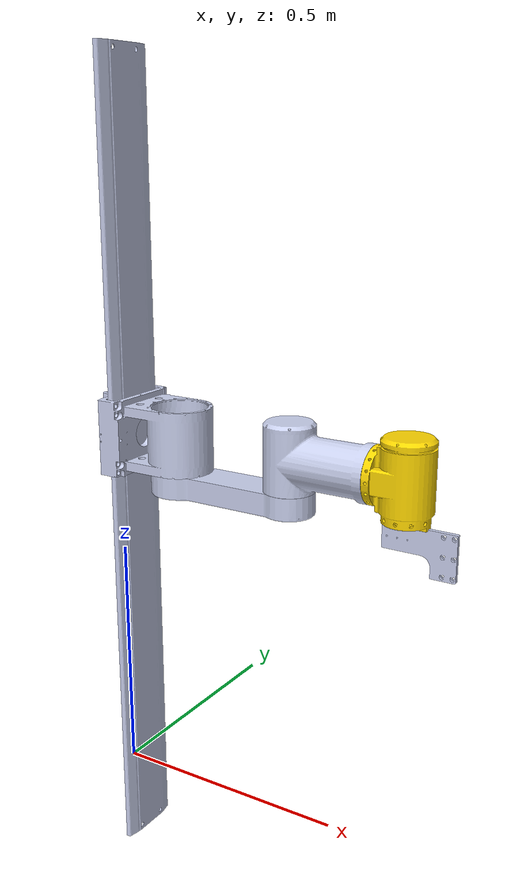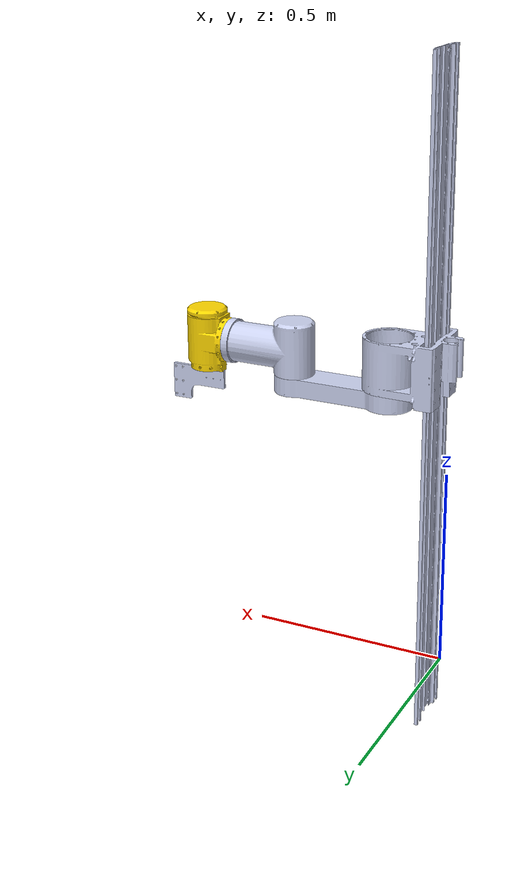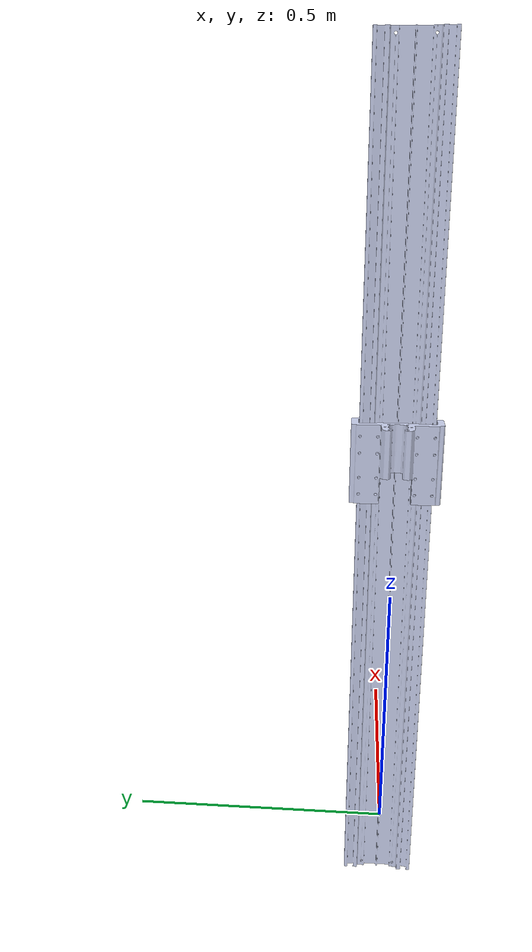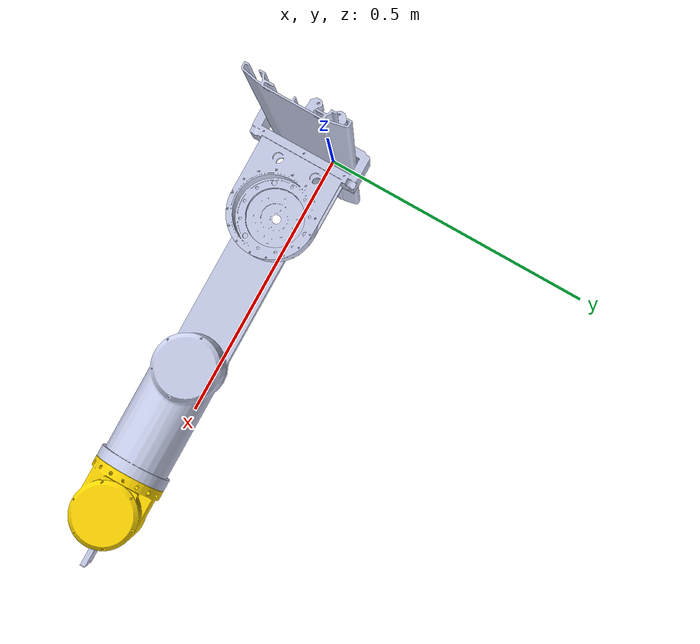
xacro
<?xml version="1.0"?>
<robot xmlns:xacro="http://www.ros.org/wiki/xacro" name="auto_store_robot_moveit_config">

  <xacro:include filename="$(find auto_store_robot_moveit_config)/config/auto_store_robot_moveit_config.ros2_control.xacro" />
  <xacro:include filename="$(find auto_store_robot_moveit_config)/config/auto_store_robot_moveit_config.urdf" />
</robot>

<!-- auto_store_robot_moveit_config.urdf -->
<robot name="auto_store_robot" xmlns:xacro="http://www.ros.org/wiki/xacro">

  <xacro:macro name="auto_store_manipulator">
    <link
      name="link0">
      <inertial>
        <origin
          xyz="0 0 0"
          rpy="0 0 0" />
        <mass
          value="1" />
        <inertia
          ixx="0.5"
          ixy="0"
          ixz="0"
          iyy="0.5"
          iyz="0"
          izz="0.5" />
      </inertial>
      <visual>
        <origin
          xyz="0 0 0"
          rpy="0 0 0" />
        <geometry>
          <mesh
            filename="package://auto_store_robot_moveit_config/meshes/link0.STL" />
        </geometry>
        <material
          name="">
          <color
            rgba="0.792156862745098 0.819607843137255 0.933333333333333 1" />
        </material>
      </visual>
      <collision>
        <origin
          xyz="0 0 0"
          rpy="0 0 0" />
        <geometry>
          <mesh
            filename="package://auto_store_robot_moveit_config/meshes/link0.STL" />
        </geometry>
      </collision>
    </link>
    <link
      name="link1">
      <inertial>
        <origin
          xyz="0 0 0"
          rpy="0 0 0" />
        <mass
          value="1" />
        <inertia
          ixx="0.5"
          ixy="0"
          ixz="0"
          iyy="0.5"
          iyz="0"
          izz="0.5" />
      </inertial>
      <visual>
        <origin
          xyz="0 0 0"
          rpy="0 0 0" />
        <geometry>
          <mesh
            filename="package://auto_store_robot_moveit_config/meshes/link1.STL" />
        </geometry>
        <material
          name="">
          <color
            rgba="0.792156862745098 0.819607843137255 0.933333333333333 1" />
        </material>
      </visual>
      <collision>
        <origin
          xyz="0 0 0"
          rpy="0 0 0" />
        <geometry>
          <mesh
            filename="package://auto_store_robot_moveit_config/meshes/link1.STL" />
        </geometry>
      </collision>
    </link>
    <link name="world"/>
    <joint name="base_joint" type="fixed">
      <parent link="world"/>
      <child link="link0"/>
      <origin xyz="0 0 0" rpy="0 0 0"/>
      <axis xyz="0 0 1"/>
    </joint>
    <joint
      name="joint0"
      type="prismatic">
      <origin
        xyz="0 0 1.4733"
        rpy="0 0 0" />
      <parent
        link="link0" />
      <child
        link="link1" />
      <axis
        xyz="0 0 1" />
      <limit
        lower="-1"
        upper="1"
        effort="9999999999"
        velocity="1" />
      <dynamics damping="0" friction="0"/>
    </joint>
    <link
      name="link2">
      <inertial>
        <origin
          xyz="0 0 0"
          rpy="0 0 0" />
        <mass
          value="1" />
        <inertia
          ixx="0.5"
          ixy="0"
          ixz="0"
          iyy="0.5"
          iyz="0"
          izz="0.5" />
      </inertial>
      <visual>
        <origin
          xyz="0 0 0"
          rpy="0 0 0" />
        <geometry>
          <mesh
            filename="package://auto_store_robot_moveit_config/meshes/link2.STL" />
        </geometry>
        <material
          name="">
          <color
            rgba="0.792156862745098 0.819607843137255 0.933333333333333 1" />
        </material>
      </visual>
      <collision>
        <origin
          xyz="0 0 0"
          rpy="0 0 0" />
        <geometry>
          <mesh
            filename="package://auto_store_robot_moveit_config/meshes/link2.STL" />
        </geometry>
      </collision>
    </link>
    <joint
      name="joint1"
      type="revolute">
      <origin
        xyz="0.151 -5E-05 -0.63299"
        rpy="0 0 0" />
      <parent
        link="link1" />
      <child
        link="link2" />
      <axis
        xyz="0 0 1" />
      <limit
        lower="${-pi}"
        upper="${pi}"
        effort="9999999999"
        velocity="1" />
      <dynamics damping="0" friction="0"/>
    </joint>
    <link
      name="link3">
      <inertial>
        <origin
          xyz="0 0 0"
          rpy="0 0 0" />
        <mass
          value="1" />
        <inertia
          ixx="0.5"
          ixy="0"
          ixz="0"
          iyy="0.5"
          iyz="0"
          izz="0.5" />
      </inertial>
      <visual>
        <origin
          xyz="0 0 0"
          rpy="0 0 0" />
        <geometry>
          <mesh
            filename="package://auto_store_robot_moveit_config/meshes/link3.STL" />
        </geometry>
        <material
          name="">
          <color
            rgba="0.792156862745098 0.819607843137255 0.933333333333333 1" />
        </material>
      </visual>
      <collision>
        <origin
          xyz="0 0 0"
          rpy="0 0 0" />
        <geometry>
          <mesh
            filename="package://auto_store_robot_moveit_config/meshes/link3.STL" />
        </geometry>
      </collision>
    </link>
    <joint
      name="joint2"
      type="revolute">
      <origin
        xyz="0.25 0 -0.01"
        rpy="0 0 0" />
      <parent
        link="link2" />
      <child
        link="link3" />
      <axis
        xyz="0 0 1" />
      <limit
        lower="${-pi}"
        upper="${pi}"
        effort="9999999999"
        velocity="1" />
      <dynamics damping="0" friction="0"/>
    </joint>
    <link
      name="link4">
      <inertial>
        <origin
          xyz="0 0 0"
          rpy="0 0 0" />
        <mass
          value="1" />
        <inertia
          ixx="0.5"
          ixy="0"
          ixz="0"
          iyy="0.5"
          iyz="0"
          izz="0.5" />
      </inertial>
      <visual>
        <origin
          xyz="0 0 0"
          rpy="0 0 0" />
        <geometry>
          <mesh
            filename="package://auto_store_robot_moveit_config/meshes/link4.STL" />
        </geometry>
        <material
          name="">
          <color
            rgba="1 0.843137254901961 0 1" />
        </material>
      </visual>
      <collision>
        <origin
          xyz="0 0 0"
          rpy="0 0 0" />
        <geometry>
          <mesh
            filename="package://auto_store_robot_moveit_config/meshes/link4.STL" />
        </geometry>
      </collision>
    </link>
    <joint
      name="joint3"
      type="revolute">
      <origin
        xyz="0.1885 0 -0.0735"
        rpy="3.1416 1.5708 0" />
      <parent
        link="link3" />
      <child
        link="link4" />
      <axis
        xyz="0 0 1" />
      <limit
        lower="${-pi}"
        upper="${pi}"
        effort="9999999999"
        velocity="1" />
      <dynamics damping="0" friction="0"/>
    </joint>
    <link
      name="link5">
      <inertial>
        <origin
          xyz="0 0 0"
          rpy="0 0 0" />
        <mass
          value="1" />
        <inertia
          ixx="0.5"
          ixy="0"
          ixz="0"
          iyy="0.5"
          iyz="0"
          izz="0.5" />
      </inertial>
      <visual>
        <origin
          xyz="0 0 0"
          rpy="0 0 0" />
        <geometry>
          <mesh
            filename="package://auto_store_robot_moveit_config/meshes/link5.STL" />
        </geometry>
        <material
          name="">
          <color
            rgba="0.792156862745098 0.819607843137255 0.933333333333333 1" />
        </material>
      </visual>
      <collision>
        <origin
          xyz="0 0 0"
          rpy="0 0 0" />
        <geometry>
          <mesh
            filename="package://auto_store_robot_moveit_config/meshes/link5.STL" />
        </geometry>
      </collision>
    </link>
    <joint
      name="joint4"
      type="revolute">
      <origin
        xyz="-0.0785 0 -0.0505"
        rpy="3.1416 1.5708 0" />
      <parent
        link="link4" />
      <child
        link="link5" />
      <axis
        xyz="0 0 1" />
      <limit
        lower="${-pi}"
        upper="${pi}"
        effort="9999999999"
        velocity="1" />
      <dynamics damping="0" friction="0"/>
    </joint>
  </xacro:macro>
  <gazebo>
    <plugin filename="gz_ros2_control-system" name="gz_ros2_control::GazeboSimROS2ControlPlugin">
      <parameters>$(find auto_store_robot_moveit_config)/config/ros2_controllers.yaml</parameters>
      <parameters>$(find auto_store_robot_moveit_config)/config/grtp.yaml</parameters>
    </plugin>
  </gazebo>
  <xacro:auto_store_manipulator/>
</robot>
